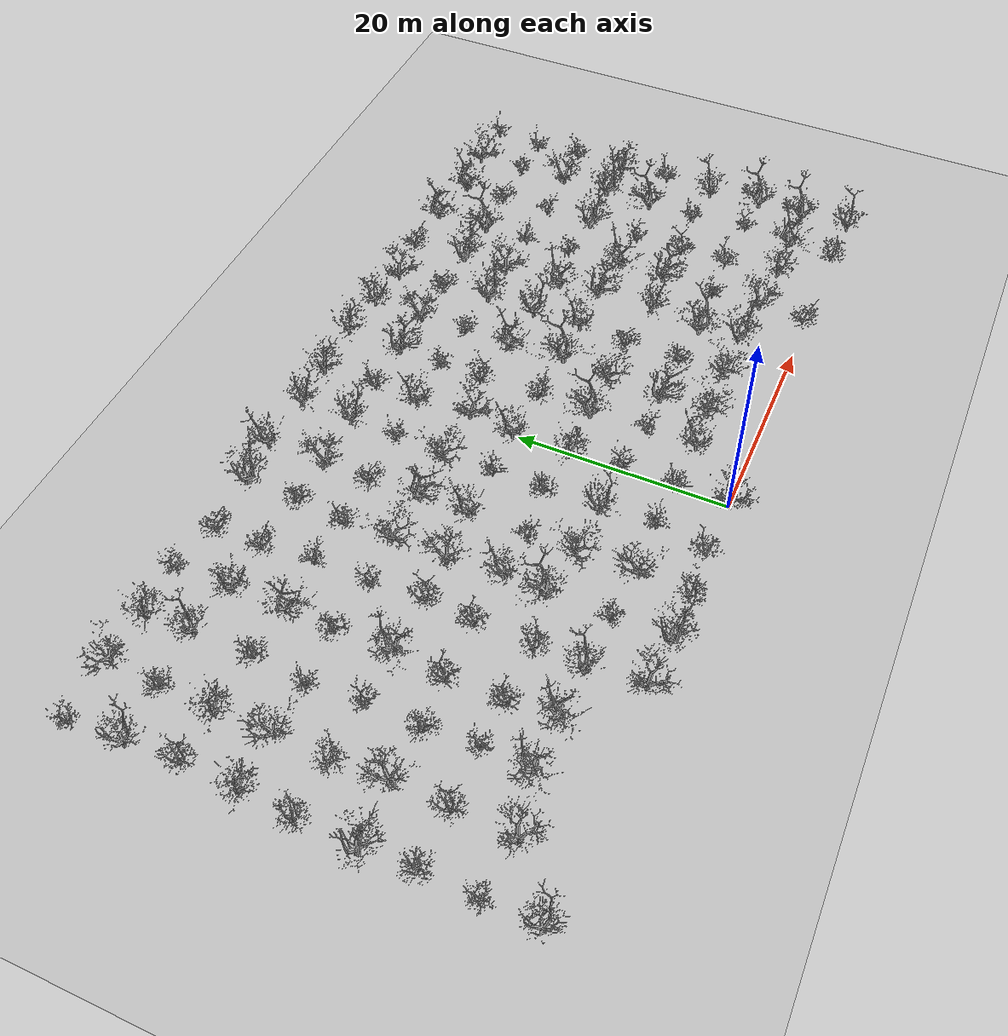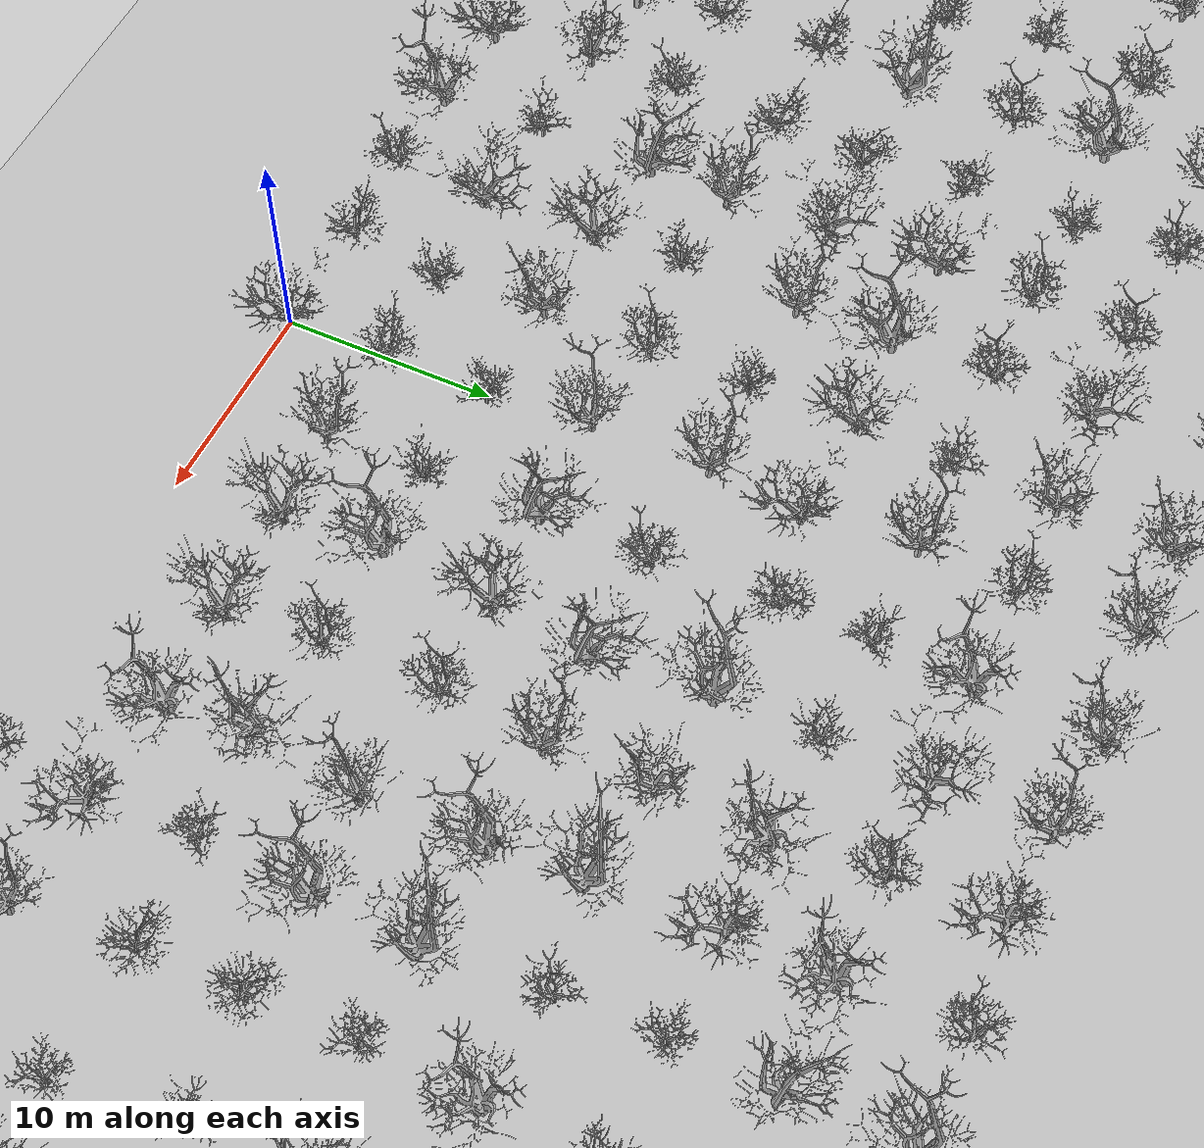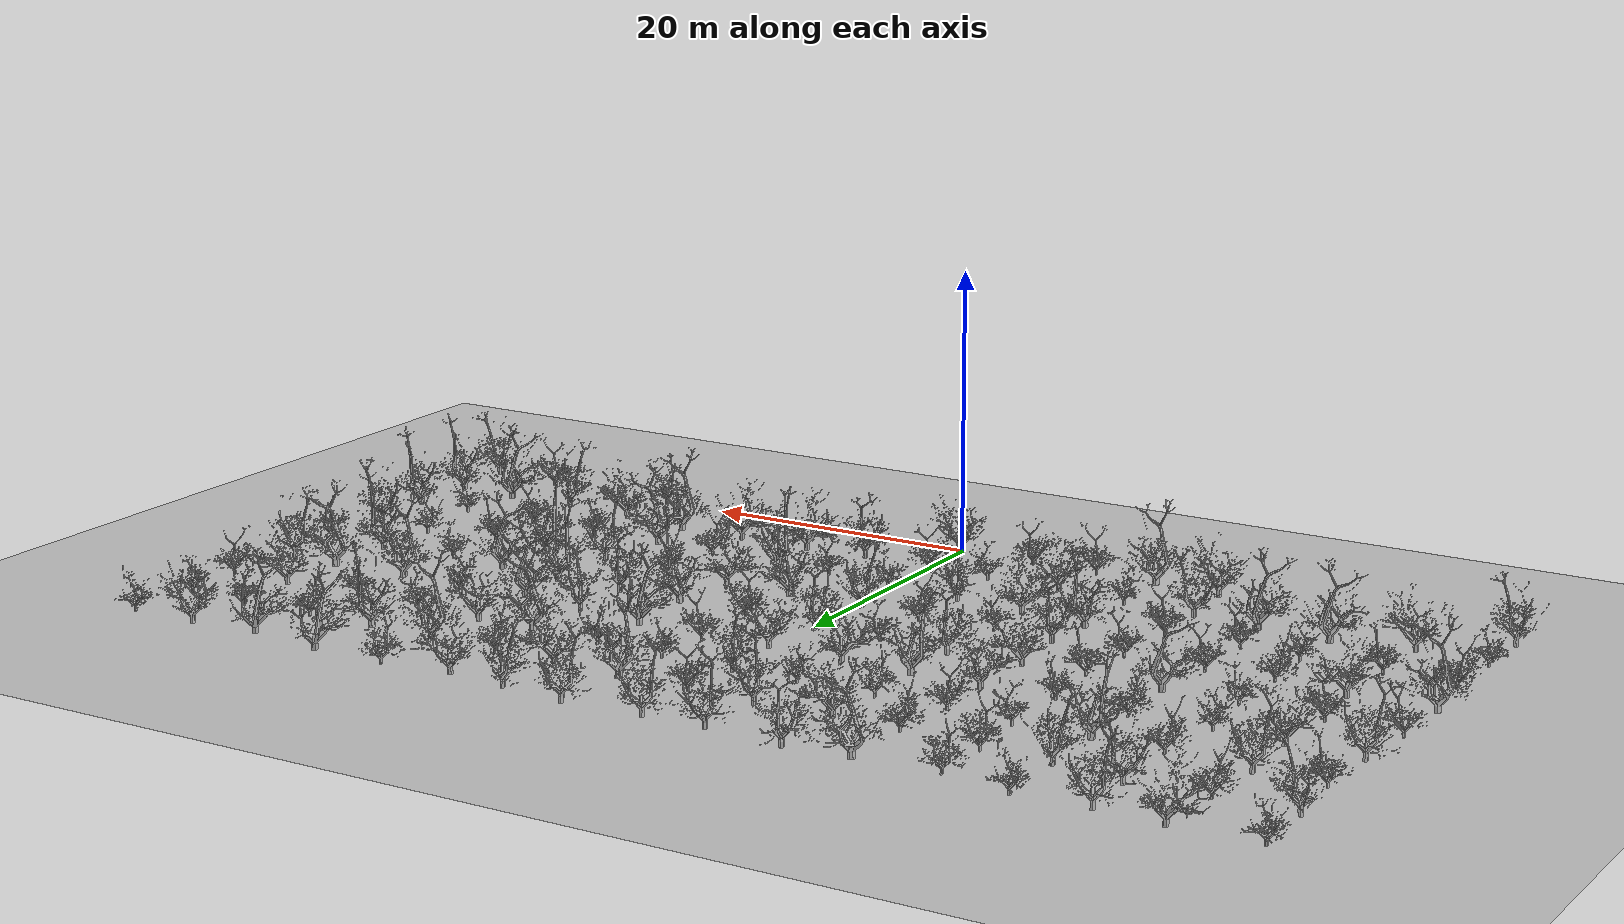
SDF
<sdf version="1.8">
 <world name="random_flat_forest">
  <include><uri>model://unitree_lidar</uri><pose>2.5 2.5 0.5 0 0 0</pose></include>
  <model name="ground_plane">
   <static>true</static>
   <link name="link">
    <collision name="collision">
     <geometry><plane><normal>0 0 1</normal><size>100 100</size></plane></geometry>
    </collision>
    <visual name="visual">
     <geometry><plane><normal>0 0 1</normal><size>100 100</size></plane></geometry>
     <material>
      <script><uri>file://media/materials/scripts/gazebo.material</uri><name>Gazebo/Gray</name></script>
     </material>
    </visual>
   </link>
  </model>
  <include>
   <uri>model://random_tree_3</uri>
   <name>tree_8</name>
   <pose>-40.34 0.28 0 0 0 4.95</pose>
   <scale>0.95 0.93 1.01</scale>
  </include>
  <include>
   <uri>model://random_tree_1</uri>
   <name>tree_9</name>
   <pose>-40.25 5.08 0 0 0 0.57</pose>
   <scale>1.10 1.01 1.15</scale>
  </include>
  <include>
   <uri>model://random_tree_4</uri>
   <name>tree_10</name>
   <pose>-39.99 10.08 0 0 0 0.12</pose>
   <scale>1.14 1.13 1.10</scale>
  </include>
  <include>
   <uri>model://random_tree_2</uri>
   <name>tree_11</name>
   <pose>-40.53 14.78 0 0 0 3.97</pose>
   <scale>0.99 1.03 0.97</scale>
  </include>
  <include>
   <uri>model://random_tree_4</uri>
   <name>tree_12</name>
   <pose>-40.43 20.05 0 0 0 3.59</pose>
   <scale>1.02 0.97 0.97</scale>
  </include>
  <include>
   <uri>model://random_tree_3</uri>
   <name>tree_13</name>
   <pose>-39.98 24.90 0 0 0 2.77</pose>
   <scale>1.13 1.17 1.11</scale>
  </include>
  <include>
   <uri>model://random_tree_4</uri>
   <name>tree_14</name>
   <pose>-39.83 30.10 0 0 0 4.15</pose>
   <scale>1.07 1.08 0.93</scale>
  </include>
  <include>
   <uri>model://random_tree_3</uri>
   <name>tree_15</name>
   <pose>-40.24 34.89 0 0 0 4.94</pose>
   <scale>0.98 0.90 1.18</scale>
  </include>
  <include>
   <uri>model://random_tree_1</uri>
   <name>tree_16</name>
   <pose>-40.37 39.87 0 0 0 1.23</pose>
   <scale>1.08 1.11 0.94</scale>
  </include>
  <include>
   <uri>model://random_tree_0</uri>
   <name>tree_26</name>
   <pose>-35.21 4.50 0 0 0 5.66</pose>
   <scale>1.18 1.25 0.97</scale>
  </include>
  <include>
   <uri>model://random_tree_4</uri>
   <name>tree_27</name>
   <pose>-35.13 9.87 0 0 0 4.23</pose>
   <scale>0.93 1.01 0.92</scale>
  </include>
  <include>
   <uri>model://random_tree_0</uri>
   <name>tree_28</name>
   <pose>-34.81 15.07 0 0 0 1.22</pose>
   <scale>1.13 1.06 1.18</scale>
  </include>
  <include>
   <uri>model://random_tree_4</uri>
   <name>tree_29</name>
   <pose>-35.41 19.87 0 0 0 3.08</pose>
   <scale>0.99 1.00 1.18</scale>
  </include>
  <include>
   <uri>model://random_tree_0</uri>
   <name>tree_30</name>
   <pose>-34.98 24.88 0 0 0 1.93</pose>
   <scale>0.97 0.94 0.94</scale>
  </include>
  <include>
   <uri>model://random_tree_3</uri>
   <name>tree_31</name>
   <pose>-35.22 30.09 0 0 0 2.78</pose>
   <scale>0.91 0.99 1.01</scale>
  </include>
  <include>
   <uri>model://random_tree_4</uri>
   <name>tree_32</name>
   <pose>-34.95 35.05 0 0 0 0.52</pose>
   <scale>1.15 1.24 1.04</scale>
  </include>
  <include>
   <uri>model://random_tree_0</uri>
   <name>tree_33</name>
   <pose>-34.53 40.13 0 0 0 3.21</pose>
   <scale>1.02 1.04 0.91</scale>
  </include>
  <include>
   <uri>model://random_tree_2</uri>
   <name>tree_43</name>
   <pose>-29.80 5.62 0 0 0 1.30</pose>
   <scale>0.95 1.02 1.15</scale>
  </include>
  <include>
   <uri>model://random_tree_1</uri>
   <name>tree_44</name>
   <pose>-29.66 10.08 0 0 0 1.82</pose>
   <scale>0.94 1.02 1.05</scale>
  </include>
  <include>
   <uri>model://random_tree_4</uri>
   <name>tree_45</name>
   <pose>-29.95 14.68 0 0 0 0.71</pose>
   <scale>0.92 0.86 0.97</scale>
  </include>
  <include>
   <uri>model://random_tree_1</uri>
   <name>tree_46</name>
   <pose>-29.81 19.78 0 0 0 0.01</pose>
   <scale>1.04 0.96 0.98</scale>
  </include>
  <include>
   <uri>model://random_tree_1</uri>
   <name>tree_47</name>
   <pose>-30.35 24.78 0 0 0 1.99</pose>
   <scale>0.98 0.94 1.09</scale>
  </include>
  <include>
   <uri>model://random_tree_4</uri>
   <name>tree_48</name>
   <pose>-29.63 29.90 0 0 0 0.46</pose>
   <scale>1.18 1.13 0.96</scale>
  </include>
  <include>
   <uri>model://random_tree_3</uri>
   <name>tree_49</name>
   <pose>-29.75 35.53 0 0 0 6.11</pose>
   <scale>1.00 1.06 1.09</scale>
  </include>
  <include>
   <uri>model://random_tree_3</uri>
   <name>tree_50</name>
   <pose>-30.00 39.91 0 0 0 3.01</pose>
   <scale>0.95 1.04 1.20</scale>
  </include>
  <include>
   <uri>model://random_tree_2</uri>
   <name>tree_60</name>
   <pose>-24.80 5.57 0 0 0 1.62</pose>
   <scale>1.04 1.10 0.92</scale>
  </include>
  <include>
   <uri>model://random_tree_4</uri>
   <name>tree_61</name>
   <pose>-25.47 9.79 0 0 0 4.90</pose>
   <scale>1.07 0.98 1.04</scale>
  </include>
  <include>
   <uri>model://random_tree_4</uri>
   <name>tree_62</name>
   <pose>-25.44 15.07 0 0 0 5.00</pose>
   <scale>1.14 1.16 1.19</scale>
  </include>
  <include>
   <uri>model://random_tree_2</uri>
   <name>tree_63</name>
   <pose>-24.72 19.85 0 0 0 1.26</pose>
   <scale>0.90 0.98 1.05</scale>
  </include>
  <include>
   <uri>model://random_tree_4</uri>
   <name>tree_64</name>
   <pose>-25.03 25.17 0 0 0 0.76</pose>
   <scale>1.18 1.12 0.93</scale>
  </include>
  <include>
   <uri>model://random_tree_2</uri>
   <name>tree_65</name>
   <pose>-24.84 29.75 0 0 0 2.74</pose>
   <scale>0.96 1.01 1.10</scale>
  </include>
  <include>
   <uri>model://random_tree_3</uri>
   <name>tree_66</name>
   <pose>-24.90 34.84 0 0 0 1.83</pose>
   <scale>1.01 1.09 0.98</scale>
  </include>
  <include>
   <uri>model://random_tree_1</uri>
   <name>tree_67</name>
   <pose>-24.98 40.22 0 0 0 1.09</pose>
   <scale>1.10 1.09 1.14</scale>
  </include>
  <include>
   <uri>model://random_tree_0</uri>
   <name>tree_76</name>
   <pose>-19.71 0.32 0 0 0 5.21</pose>
   <scale>1.14 1.13 0.95</scale>
  </include>
  <include>
   <uri>model://random_tree_3</uri>
   <name>tree_77</name>
   <pose>-20.17 5.26 0 0 0 5.75</pose>
   <scale>1.04 0.97 1.04</scale>
  </include>
  <include>
   <uri>model://random_tree_4</uri>
   <name>tree_78</name>
   <pose>-20.16 9.81 0 0 0 3.13</pose>
   <scale>0.95 0.93 0.92</scale>
  </include>
  <include>
   <uri>model://random_tree_4</uri>
   <name>tree_79</name>
   <pose>-19.91 15.16 0 0 0 4.88</pose>
   <scale>1.18 1.24 1.01</scale>
  </include>
  <include>
   <uri>model://random_tree_4</uri>
   <name>tree_80</name>
   <pose>-19.47 19.68 0 0 0 4.15</pose>
   <scale>1.00 0.97 0.91</scale>
  </include>
  <include>
   <uri>model://random_tree_1</uri>
   <name>tree_81</name>
   <pose>-19.88 24.59 0 0 0 0.51</pose>
   <scale>0.95 0.86 1.04</scale>
  </include>
  <include>
   <uri>model://random_tree_1</uri>
   <name>tree_82</name>
   <pose>-19.76 30.05 0 0 0 5.08</pose>
   <scale>1.14 1.18 0.91</scale>
  </include>
  <include>
   <uri>model://random_tree_4</uri>
   <name>tree_83</name>
   <pose>-20.24 34.95 0 0 0 1.94</pose>
   <scale>1.17 1.12 1.03</scale>
  </include>
  <include>
   <uri>model://random_tree_4</uri>
   <name>tree_84</name>
   <pose>-20.20 39.42 0 0 0 1.66</pose>
   <scale>1.07 1.13 0.96</scale>
  </include>
  <include>
   <uri>model://random_tree_2</uri>
   <name>tree_93</name>
   <pose>-14.93 0.03 0 0 0 3.94</pose>
   <scale>1.13 1.20 0.92</scale>
  </include>
  <include>
   <uri>model://random_tree_1</uri>
   <name>tree_94</name>
   <pose>-15.04 5.20 0 0 0 2.59</pose>
   <scale>0.95 1.01 1.02</scale>
  </include>
  <include>
   <uri>model://random_tree_2</uri>
   <name>tree_95</name>
   <pose>-14.97 10.86 0 0 0 0.18</pose>
   <scale>1.13 1.05 1.16</scale>
  </include>
  <include>
   <uri>model://random_tree_3</uri>
   <name>tree_96</name>
   <pose>-14.64 14.88 0 0 0 0.60</pose>
   <scale>1.16 1.18 1.03</scale>
  </include>
  <include>
   <uri>model://random_tree_0</uri>
   <name>tree_97</name>
   <pose>-15.11 19.89 0 0 0 0.67</pose>
   <scale>0.94 0.93 1.13</scale>
  </include>
  <include>
   <uri>model://random_tree_0</uri>
   <name>tree_98</name>
   <pose>-15.03 25.25 0 0 0 4.58</pose>
   <scale>0.91 0.88 0.99</scale>
  </include>
  <include>
   <uri>model://random_tree_4</uri>
   <name>tree_99</name>
   <pose>-15.14 29.67 0 0 0 6.26</pose>
   <scale>1.05 1.00 1.09</scale>
  </include>
  <include>
   <uri>model://random_tree_4</uri>
   <name>tree_100</name>
   <pose>-14.63 34.46 0 0 0 0.84</pose>
   <scale>0.96 0.87 0.95</scale>
  </include>
  <include>
   <uri>model://random_tree_2</uri>
   <name>tree_101</name>
   <pose>-14.48 39.82 0 0 0 4.63</pose>
   <scale>1.03 1.12 1.02</scale>
  </include>
  <include>
   <uri>model://random_tree_4</uri>
   <name>tree_110</name>
   <pose>-10.42 0.01 0 0 0 2.93</pose>
   <scale>1.08 1.00 1.08</scale>
  </include>
  <include>
   <uri>model://random_tree_0</uri>
   <name>tree_111</name>
   <pose>-9.92 4.64 0 0 0 1.52</pose>
   <scale>0.91 0.92 1.15</scale>
  </include>
  <include>
   <uri>model://random_tree_0</uri>
   <name>tree_112</name>
   <pose>-10.06 10.33 0 0 0 3.98</pose>
   <scale>1.19 1.12 0.99</scale>
  </include>
  <include>
   <uri>model://random_tree_1</uri>
   <name>tree_113</name>
   <pose>-10.31 14.61 0 0 0 4.45</pose>
   <scale>1.04 1.02 1.12</scale>
  </include>
  <include>
   <uri>model://random_tree_3</uri>
   <name>tree_114</name>
   <pose>-10.01 20.38 0 0 0 0.84</pose>
   <scale>1.06 1.05 0.94</scale>
  </include>
  <include>
   <uri>model://random_tree_2</uri>
   <name>tree_115</name>
   <pose>-10.01 25.02 0 0 0 2.97</pose>
   <scale>1.04 1.06 0.93</scale>
  </include>
  <include>
   <uri>model://random_tree_4</uri>
   <name>tree_116</name>
   <pose>-10.25 29.90 0 0 0 1.44</pose>
   <scale>1.18 1.21 1.08</scale>
  </include>
  <include>
   <uri>model://random_tree_0</uri>
   <name>tree_117</name>
   <pose>-9.97 34.39 0 0 0 0.53</pose>
   <scale>0.94 0.94 1.13</scale>
  </include>
  <include>
   <uri>model://random_tree_3</uri>
   <name>tree_118</name>
   <pose>-10.06 40.33 0 0 0 0.81</pose>
   <scale>1.01 0.97 1.07</scale>
  </include>
  <include>
   <uri>model://random_tree_4</uri>
   <name>tree_127</name>
   <pose>-5.65 0.21 0 0 0 5.37</pose>
   <scale>0.91 0.96 1.07</scale>
  </include>
  <include>
   <uri>model://random_tree_1</uri>
   <name>tree_128</name>
   <pose>-4.68 5.03 0 0 0 5.41</pose>
   <scale>1.14 1.08 0.97</scale>
  </include>
  <include>
   <uri>model://random_tree_3</uri>
   <name>tree_129</name>
   <pose>-5.17 10.16 0 0 0 4.16</pose>
   <scale>1.03 0.94 1.00</scale>
  </include>
  <include>
   <uri>model://random_tree_4</uri>
   <name>tree_130</name>
   <pose>-5.07 15.32 0 0 0 0.16</pose>
   <scale>1.17 1.28 0.90</scale>
  </include>
  <include>
   <uri>model://random_tree_1</uri>
   <name>tree_131</name>
   <pose>-5.04 20.28 0 0 0 5.67</pose>
   <scale>0.98 1.04 1.13</scale>
  </include>
  <include>
   <uri>model://random_tree_0</uri>
   <name>tree_132</name>
   <pose>-5.16 25.31 0 0 0 4.22</pose>
   <scale>1.13 1.10 1.00</scale>
  </include>
  <include>
   <uri>model://random_tree_1</uri>
   <name>tree_133</name>
   <pose>-4.80 30.08 0 0 0 2.27</pose>
   <scale>1.20 1.08 1.06</scale>
  </include>
  <include>
   <uri>model://random_tree_3</uri>
   <name>tree_134</name>
   <pose>-4.67 34.80 0 0 0 3.98</pose>
   <scale>0.94 0.94 0.96</scale>
  </include>
  <include>
   <uri>model://random_tree_3</uri>
   <name>tree_135</name>
   <pose>-4.52 39.97 0 0 0 3.64</pose>
   <scale>1.11 1.12 0.93</scale>
  </include>
  <include>
   <uri>model://random_tree_0</uri>
   <name>tree_144</name>
   <pose>0.08 0.11 0 0 0 5.17</pose>
   <scale>0.99 1.08 1.06</scale>
  </include>
  <include>
   <uri>model://random_tree_4</uri>
   <name>tree_145</name>
   <pose>0.07 4.85 0 0 0 5.75</pose>
   <scale>1.06 1.03 1.19</scale>
  </include>
  <include>
   <uri>model://random_tree_1</uri>
   <name>tree_146</name>
   <pose>0.26 10.02 0 0 0 6.27</pose>
   <scale>1.12 1.20 1.05</scale>
  </include>
  <include>
   <uri>model://random_tree_3</uri>
   <name>tree_147</name>
   <pose>-0.34 14.88 0 0 0 2.36</pose>
   <scale>1.03 0.96 1.07</scale>
  </include>
  <include>
   <uri>model://random_tree_3</uri>
   <name>tree_148</name>
   <pose>-0.25 20.51 0 0 0 0.98</pose>
   <scale>1.03 1.11 0.98</scale>
  </include>
  <include>
   <uri>model://random_tree_0</uri>
   <name>tree_149</name>
   <pose>0.34 25.05 0 0 0 5.24</pose>
   <scale>0.93 0.92 1.12</scale>
  </include>
  <include>
   <uri>model://random_tree_3</uri>
   <name>tree_150</name>
   <pose>-0.20 30.20 0 0 0 1.24</pose>
   <scale>0.93 1.02 1.04</scale>
  </include>
  <include>
   <uri>model://random_tree_4</uri>
   <name>tree_151</name>
   <pose>0.16 34.73 0 0 0 5.97</pose>
   <scale>1.02 0.92 1.13</scale>
  </include>
  <include>
   <uri>model://random_tree_3</uri>
   <name>tree_152</name>
   <pose>-0.11 40.11 0 0 0 3.14</pose>
   <scale>1.01 0.97 1.10</scale>
  </include>
  <include>
   <uri>model://random_tree_3</uri>
   <name>tree_162</name>
   <pose>5.16 4.73 0 0 0 0.65</pose>
   <scale>0.96 0.88 1.15</scale>
  </include>
  <include>
   <uri>model://random_tree_1</uri>
   <name>tree_163</name>
   <pose>5.20 9.58 0 0 0 4.52</pose>
   <scale>1.17 1.27 0.96</scale>
  </include>
  <include>
   <uri>model://random_tree_2</uri>
   <name>tree_164</name>
   <pose>4.99 14.96 0 0 0 5.97</pose>
   <scale>0.93 0.89 1.06</scale>
  </include>
  <include>
   <uri>model://random_tree_4</uri>
   <name>tree_165</name>
   <pose>5.12 20.26 0 0 0 2.40</pose>
   <scale>1.06 0.96 1.14</scale>
  </include>
  <include>
   <uri>model://random_tree_4</uri>
   <name>tree_166</name>
   <pose>4.78 26.11 0 0 0 3.50</pose>
   <scale>1.11 1.14 1.17</scale>
  </include>
  <include>
   <uri>model://random_tree_1</uri>
   <name>tree_167</name>
   <pose>5.03 30.29 0 0 0 1.39</pose>
   <scale>1.13 1.21 1.10</scale>
  </include>
  <include>
   <uri>model://random_tree_2</uri>
   <name>tree_168</name>
   <pose>5.23 34.82 0 0 0 3.65</pose>
   <scale>0.95 0.88 1.15</scale>
  </include>
  <include>
   <uri>model://random_tree_3</uri>
   <name>tree_169</name>
   <pose>5.50 40.54 0 0 0 2.99</pose>
   <scale>1.07 1.18 1.05</scale>
  </include>
  <include>
   <uri>model://random_tree_0</uri>
   <name>tree_179</name>
   <pose>9.69 5.13 0 0 0 3.35</pose>
   <scale>0.96 0.91 1.08</scale>
  </include>
  <include>
   <uri>model://random_tree_2</uri>
   <name>tree_180</name>
   <pose>9.35 9.76 0 0 0 3.20</pose>
   <scale>0.93 0.86 0.91</scale>
  </include>
  <include>
   <uri>model://random_tree_0</uri>
   <name>tree_181</name>
   <pose>9.89 15.23 0 0 0 3.86</pose>
   <scale>0.99 0.99 0.95</scale>
  </include>
  <include>
   <uri>model://random_tree_2</uri>
   <name>tree_182</name>
   <pose>10.52 19.95 0 0 0 6.08</pose>
   <scale>1.19 1.16 0.98</scale>
  </include>
  <include>
   <uri>model://random_tree_2</uri>
   <name>tree_183</name>
   <pose>10.10 25.37 0 0 0 2.04</pose>
   <scale>1.07 1.17 0.96</scale>
  </include>
  <include>
   <uri>model://random_tree_1</uri>
   <name>tree_184</name>
   <pose>10.08 30.18 0 0 0 3.91</pose>
   <scale>0.94 0.85 0.94</scale>
  </include>
  <include>
   <uri>model://random_tree_0</uri>
   <name>tree_185</name>
   <pose>10.04 34.89 0 0 0 0.36</pose>
   <scale>1.04 0.97 1.05</scale>
  </include>
  <include>
   <uri>model://random_tree_3</uri>
   <name>tree_186</name>
   <pose>10.21 40.12 0 0 0 1.87</pose>
   <scale>1.05 1.02 0.90</scale>
  </include>
  <include>
   <uri>model://random_tree_0</uri>
   <name>tree_196</name>
   <pose>14.95 5.33 0 0 0 3.37</pose>
   <scale>0.95 1.02 0.96</scale>
  </include>
  <include>
   <uri>model://random_tree_4</uri>
   <name>tree_197</name>
   <pose>14.59 9.73 0 0 0 0.46</pose>
   <scale>1.06 1.11 1.08</scale>
  </include>
  <include>
   <uri>model://random_tree_4</uri>
   <name>tree_198</name>
   <pose>14.66 15.24 0 0 0 0.76</pose>
   <scale>1.00 1.09 1.02</scale>
  </include>
  <include>
   <uri>model://random_tree_3</uri>
   <name>tree_199</name>
   <pose>15.23 20.17 0 0 0 0.96</pose>
   <scale>1.09 1.14 0.93</scale>
  </include>
  <include>
   <uri>model://random_tree_3</uri>
   <name>tree_200</name>
   <pose>15.02 25.04 0 0 0 4.38</pose>
   <scale>1.00 1.02 1.20</scale>
  </include>
  <include>
   <uri>model://random_tree_2</uri>
   <name>tree_201</name>
   <pose>15.25 30.07 0 0 0 4.65</pose>
   <scale>1.03 1.02 1.04</scale>
  </include>
  <include>
   <uri>model://random_tree_4</uri>
   <name>tree_202</name>
   <pose>14.77 34.84 0 0 0 0.98</pose>
   <scale>1.18 1.19 1.04</scale>
  </include>
  <include>
   <uri>model://random_tree_0</uri>
   <name>tree_203</name>
   <pose>14.53 39.71 0 0 0 5.66</pose>
   <scale>1.08 1.01 1.01</scale>
  </include>
  <include>
   <uri>model://random_tree_2</uri>
   <name>tree_213</name>
   <pose>19.89 5.49 0 0 0 4.11</pose>
   <scale>1.17 1.07 0.97</scale>
  </include>
  <include>
   <uri>model://random_tree_2</uri>
   <name>tree_214</name>
   <pose>19.40 9.31 0 0 0 5.10</pose>
   <scale>1.08 0.99 1.04</scale>
  </include>
  <include>
   <uri>model://random_tree_3</uri>
   <name>tree_215</name>
   <pose>20.31 14.62 0 0 0 3.25</pose>
   <scale>1.16 1.22 1.01</scale>
  </include>
  <include>
   <uri>model://random_tree_2</uri>
   <name>tree_216</name>
   <pose>20.28 20.25 0 0 0 3.33</pose>
   <scale>1.08 1.09 1.18</scale>
  </include>
  <include>
   <uri>model://random_tree_2</uri>
   <name>tree_217</name>
   <pose>19.97 24.32 0 0 0 1.48</pose>
   <scale>1.04 1.05 1.15</scale>
  </include>
  <include>
   <uri>model://random_tree_0</uri>
   <name>tree_218</name>
   <pose>19.55 30.12 0 0 0 5.67</pose>
   <scale>1.12 1.04 1.15</scale>
  </include>
  <include>
   <uri>model://random_tree_2</uri>
   <name>tree_219</name>
   <pose>19.73 34.86 0 0 0 4.11</pose>
   <scale>1.03 1.05 1.11</scale>
  </include>
  <include>
   <uri>model://random_tree_4</uri>
   <name>tree_220</name>
   <pose>19.47 40.37 0 0 0 1.72</pose>
   <scale>1.07 1.17 1.15</scale>
  </include>
  <include>
   <uri>model://random_tree_4</uri>
   <name>tree_229</name>
   <pose>24.67 0.41 0 0 0 1.55</pose>
   <scale>0.90 0.98 0.95</scale>
  </include>
  <include>
   <uri>model://random_tree_0</uri>
   <name>tree_230</name>
   <pose>25.07 4.92 0 0 0 6.04</pose>
   <scale>1.13 1.19 0.93</scale>
  </include>
  <include>
   <uri>model://random_tree_1</uri>
   <name>tree_231</name>
   <pose>24.68 9.74 0 0 0 1.37</pose>
   <scale>0.94 0.89 1.10</scale>
  </include>
  <include>
   <uri>model://random_tree_2</uri>
   <name>tree_232</name>
   <pose>25.05 15.09 0 0 0 3.11</pose>
   <scale>1.01 1.09 1.13</scale>
  </include>
  <include>
   <uri>model://random_tree_2</uri>
   <name>tree_233</name>
   <pose>25.27 19.81 0 0 0 1.57</pose>
   <scale>1.17 1.11 1.19</scale>
  </include>
  <include>
   <uri>model://random_tree_1</uri>
   <name>tree_234</name>
   <pose>24.78 25.34 0 0 0 2.50</pose>
   <scale>1.15 1.23 0.99</scale>
  </include>
  <include>
   <uri>model://random_tree_1</uri>
   <name>tree_235</name>
   <pose>24.63 30.00 0 0 0 5.41</pose>
   <scale>1.15 1.12 0.99</scale>
  </include>
  <include>
   <uri>model://random_tree_2</uri>
   <name>tree_236</name>
   <pose>24.74 34.69 0 0 0 0.11</pose>
   <scale>1.12 1.16 1.09</scale>
  </include>
  <include>
   <uri>model://random_tree_2</uri>
   <name>tree_237</name>
   <pose>24.88 40.31 0 0 0 2.44</pose>
   <scale>1.15 1.09 0.96</scale>
  </include>
  <include>
   <uri>model://random_tree_3</uri>
   <name>tree_247</name>
   <pose>30.33 4.67 0 0 0 2.02</pose>
   <scale>1.20 1.19 0.95</scale>
  </include>
  <include>
   <uri>model://random_tree_4</uri>
   <name>tree_248</name>
   <pose>29.69 9.98 0 0 0 5.02</pose>
   <scale>0.91 0.86 1.03</scale>
  </include>
  <include>
   <uri>model://random_tree_4</uri>
   <name>tree_249</name>
   <pose>29.60 14.73 0 0 0 4.41</pose>
   <scale>1.05 1.13 0.94</scale>
  </include>
  <include>
   <uri>model://random_tree_1</uri>
   <name>tree_250</name>
   <pose>29.61 19.59 0 0 0 6.16</pose>
   <scale>1.06 1.06 1.05</scale>
  </include>
  <include>
   <uri>model://random_tree_2</uri>
   <name>tree_251</name>
   <pose>29.85 24.95 0 0 0 3.92</pose>
   <scale>1.06 1.11 1.15</scale>
  </include>
  <include>
   <uri>model://random_tree_1</uri>
   <name>tree_252</name>
   <pose>29.88 29.88 0 0 0 4.50</pose>
   <scale>1.20 1.12 1.15</scale>
  </include>
  <include>
   <uri>model://random_tree_4</uri>
   <name>tree_253</name>
   <pose>29.70 35.02 0 0 0 1.06</pose>
   <scale>1.14 1.11 1.03</scale>
  </include>
  <include>
   <uri>model://random_tree_2</uri>
   <name>tree_254</name>
   <pose>30.37 39.63 0 0 0 2.29</pose>
   <scale>1.09 1.12 0.96</scale>
  </include>
  <include>
   <uri>model://random_tree_4</uri>
   <name>tree_263</name>
   <pose>34.86 0.35 0 0 0 2.87</pose>
   <scale>1.04 1.09 1.01</scale>
  </include>
  <include>
   <uri>model://random_tree_2</uri>
   <name>tree_264</name>
   <pose>35.40 4.95 0 0 0 1.87</pose>
   <scale>1.15 1.07 1.14</scale>
  </include>
  <include>
   <uri>model://random_tree_1</uri>
   <name>tree_265</name>
   <pose>35.83 9.78 0 0 0 6.02</pose>
   <scale>0.95 0.96 1.03</scale>
  </include>
  <include>
   <uri>model://random_tree_1</uri>
   <name>tree_266</name>
   <pose>35.08 15.52 0 0 0 2.03</pose>
   <scale>1.14 1.03 1.03</scale>
  </include>
  <include>
   <uri>model://random_tree_2</uri>
   <name>tree_267</name>
   <pose>35.22 20.31 0 0 0 0.18</pose>
   <scale>1.16 1.12 1.12</scale>
  </include>
  <include>
   <uri>model://random_tree_2</uri>
   <name>tree_268</name>
   <pose>35.47 25.30 0 0 0 4.72</pose>
   <scale>1.05 1.10 1.10</scale>
  </include>
  <include>
   <uri>model://random_tree_0</uri>
   <name>tree_269</name>
   <pose>35.56 30.30 0 0 0 0.24</pose>
   <scale>1.11 1.11 1.00</scale>
  </include>
  <include>
   <uri>model://random_tree_1</uri>
   <name>tree_270</name>
   <pose>35.08 35.18 0 0 0 4.24</pose>
   <scale>1.16 1.22 0.94</scale>
  </include>
  <include>
   <uri>model://random_tree_0</uri>
   <name>tree_271</name>
   <pose>35.22 40.16 0 0 0 5.28</pose>
   <scale>1.01 1.10 0.92</scale>
  </include>
  <include>
   <uri>model://random_tree_3</uri>
   <name>tree_280</name>
   <pose>40.20 0.02 0 0 0 5.21</pose>
   <scale>1.01 0.98 0.91</scale>
  </include>
  <include>
   <uri>model://random_tree_2</uri>
   <name>tree_281</name>
   <pose>39.87 4.87 0 0 0 0.22</pose>
   <scale>0.90 0.98 1.12</scale>
  </include>
  <include>
   <uri>model://random_tree_2</uri>
   <name>tree_282</name>
   <pose>40.22 9.63 0 0 0 0.09</pose>
   <scale>1.19 1.14 0.96</scale>
  </include>
  <include>
   <uri>model://random_tree_3</uri>
   <name>tree_283</name>
   <pose>39.67 14.96 0 0 0 5.97</pose>
   <scale>1.02 1.00 1.13</scale>
  </include>
  <include>
   <uri>model://random_tree_4</uri>
   <name>tree_284</name>
   <pose>40.21 20.05 0 0 0 5.45</pose>
   <scale>1.15 1.25 1.01</scale>
  </include>
  <include>
   <uri>model://random_tree_3</uri>
   <name>tree_285</name>
   <pose>39.32 25.08 0 0 0 2.59</pose>
   <scale>1.12 1.16 1.11</scale>
  </include>
  <include>
   <uri>model://random_tree_4</uri>
   <name>tree_286</name>
   <pose>40.08 30.50 0 0 0 0.02</pose>
   <scale>1.16 1.12 0.91</scale>
  </include>
  <include>
   <uri>model://random_tree_1</uri>
   <name>tree_287</name>
   <pose>39.63 35.16 0 0 0 1.60</pose>
   <scale>0.99 0.92 0.91</scale>
  </include>
  <include>
   <uri>model://random_tree_1</uri>
   <name>tree_288</name>
   <pose>40.22 40.12 0 0 0 1.31</pose>
   <scale>0.94 0.93 0.98</scale>
  </include>
 </world>
</sdf>
